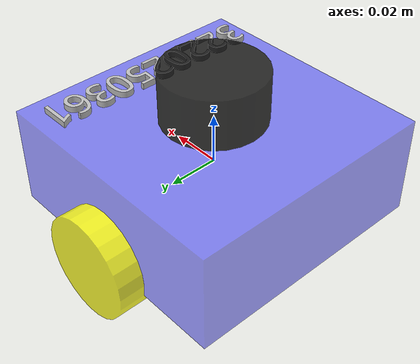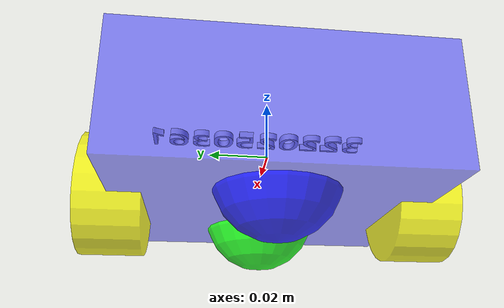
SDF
<?xml version="1.0"?>
<sdf version="1.5">
  <model name="robot">
    <pose>0 0 0 0 0 0</pose>

    <!-- Base Link -->
    <link name="base_link">
      <inertial>
        <mass>0.2</mass>
        <inertia>
          <ixx>0.00019333333</ixx>
          <ixy>0</ixy>
          <ixz>0</ixz>
          <iyy>0.00033333333</iyy>
          <iyz>0</iyz>
          <izz>0.00019333333</izz>
        </inertia>
      </inertial>
      <visual name="visual">
        <geometry>
          <box>
            <size>0.1 0.1 0.04</size>
          </box>
        </geometry>
        <material>
          <ambient>0.1 0.1 1.0 0.5</ambient>
          <diffuse>0.1 0.1 1.0 0.5</diffuse>
        </material>
      </visual>
      <collision name="collision">
        <geometry>
          <box>
            <size>0.1 0.1 0.04</size>
          </box>
        </geometry>
      </collision>
    </link>

    <!-- Laser Link -->
    <link name="laser_link">
      <inertial>
        <mass>0.1</mass>
        <inertia>
          <ixx>0.0000417</ixx>
          <ixy>0</ixy>
          <ixz>0</ixz>
          <iyy>0.0000417</iyy>
          <iyz>0</iyz>
          <izz>0.00002</izz>
        </inertia>
      </inertial>
      <visual name="visual">
      <pose>0 0 0.03 0 0 0</pose>
        <geometry>
          <cylinder>
            <radius>0.02</radius>
            <length>0.02</length>
          </cylinder>
        </geometry>
        <material>
          <ambient>0.0 0.0 0.0 0.8</ambient>
          <diffuse>0.0 0.0 0.0 0.8</diffuse>
        </material>
      </visual>
      <collision name="collision">
      <pose>0 0 0.03 0 0 0</pose>
        <geometry>
          <cylinder>
            <radius>0.02</radius>
            <length>0.02</length>
          </cylinder>
        </geometry>
      </collision>
      <sensor name="laser_sensor" type="gpu_lidar">
        <gz_frame_id>base_link</gz_frame_id>
        <always_on>true</always_on>
        <visualize>true</visualize>
        <update_rate>10</update_rate>
        <topic>scan</topic>
        <lidar>
          <scan>
            <horizontal>
              <samples>360</samples>
              <min_angle>0.0</min_angle>
              <max_angle>6.283185</max_angle>
            </horizontal>
          </scan>
          <range>
            <min>0.08</min>
            <max>10.0</max>
          </range>
          <noise>
            <type>gaussian</type>
            <mean>0.0</mean>
            <stddev>0.01</stddev>
          </noise>
        </lidar>
      </sensor>
    </link>

    <!-- Laser Joint -->
    <joint name="laser_joint" type="fixed">
      <parent>base_link</parent>
      <child>laser_link</child>
      <pose>0 0 0.03 0 0 0</pose>
    </joint>

    <!-- Left Wheel Link -->
    <link name="left_wheel_link">
      <inertial>
        <mass>0.02</mass>
        <inertia>
          <ixx>0.00000278</ixx>
          <ixy>0</ixy>
          <ixz>0</ixz>
          <iyy>0.00000278</iyy>
          <iyz>0</iyz>
          <izz>0.00000004</izz>
        </inertia>
      </inertial>
      <visual name="visual">
      <pose>0 0.05 -0.015 1.57079 0 0</pose>
        <geometry>
          <cylinder>
            <radius>0.02</radius>
            <length>0.02</length>
          </cylinder>
        </geometry>
        <material>
          <ambient>1.0 1.0 0.0 0.8</ambient>
          <diffuse>1.0 1.0 0.0 0.8</diffuse>
        </material>
      </visual>
      <collision name="collision">
      <pose>0 0.05 -0.015 1.57079 0 0</pose>
        <geometry>
          <cylinder>
            <radius>0.02</radius>
            <length>0.02</length>
          </cylinder>
        </geometry>
      </collision>
    </link>

    <!-- Left Wheel Joint -->
    <joint name="left_wheel_joint" type="revolute">
      <parent>base_link</parent>
      <child>left_wheel_link</child>
      <pose>0 0.05 -0.015 1.57079 0 0</pose>
      <axis>
        <xyz>0 0 -1</xyz>
      </axis>
    </joint>

    <!-- Right Wheel Link -->
    <link name="right_wheel_link">
      <inertial>
        <mass>0.02</mass>
        <inertia>
          <ixx>0.00000278</ixx>
          <ixy>0</ixy>
          <ixz>0</ixz>
          <iyy>0.00000278</iyy>
          <iyz>0</iyz>
          <izz>0.00000004</izz>
        </inertia>
      </inertial>
      <visual name="visual">
      <pose>0 -0.05 -0.015 1.57079 0 0</pose>
        <geometry>
          <cylinder>
            <radius>0.02</radius>
            <length>0.02</length>
          </cylinder>
        </geometry>
        <material>
          <ambient>1.0 1.0 0.0 0.8</ambient>
          <diffuse>1.0 1.0 0.0 0.8</diffuse>
        </material>
      </visual>
      <collision name="collision">
      <pose>0 -0.05 -0.015 1.57079 0 0</pose>
        <geometry>
          <cylinder>
            <radius>0.02</radius>
            <length>0.02</length>
          </cylinder>
        </geometry>
      </collision>
    </link>

    <!-- Right Wheel Joint -->
    <joint name="right_wheel_joint" type="revolute">
      <parent>base_link</parent>
      <child>right_wheel_link</child>
      <pose>0 -0.05 -0.015 1.57079 0 0</pose>
      <axis>
        <xyz>0 0 -1</xyz>
      </axis>
    </joint>

    <!-- Front Ball Link -->
    <link name="front_boll_link">
      <inertial>
        <mass>0.001</mass>
        <inertia>
          <ixx>0.00001</ixx>
          <ixy>0.000</ixy>
          <ixz>0.000</ixz>
          <iyy>0.00001</iyy>
          <iyz>0.000</iyz>
          <izz>0.00001</izz>
        </inertia>
      </inertial>
      <visual name="visual">
      <pose>0.025 0 -0.015 0 0 0</pose>
        <geometry>
          <sphere>
            <radius>0.02</radius>
          </sphere>
        </geometry>
        <material>
          <ambient>0.0 1.0 0.0 0.8</ambient>
          <diffuse>0.0 1.0 0.0 0.8</diffuse>
        </material>
      </visual>
      <collision name="collision">
      <pose>0.025 0 -0.015 0 0 0</pose>
        <geometry>
          <sphere>
            <radius>0.02</radius>
          </sphere>
        </geometry>
        <surface>
          <contact>
            <ode>
              <soft_cfm>0</soft_cfm>
              <soft_erp>0.2</soft_erp>
              <kp>1e+5</kp>
              <kd>1</kd>
              <max_vel>0.01</max_vel>
              <min_depth>0.001</min_depth>
            </ode>
          </contact>
        </surface>
      </collision>
    </link>

    <!-- Front Ball Joint -->
    <joint name="front_boll_joint" type="ball">
      <parent>base_link</parent>
      <child>front_boll_link</child>
      <pose>0.025 0 -0.015 0 0 0</pose>
    </joint>

    <!-- Back Ball Link -->
    <link name="behind_boll_link">
      <inertial>
        <mass>0.001</mass>
        <inertia>
          <ixx>0.00001</ixx>
          <ixy>0.000</ixy>
          <ixz>0.000</ixz>
          <iyy>0.00001</iyy>
          <iyz>0.000</iyz>
          <izz>0.00001</izz>
        </inertia>
      </inertial>
      <visual name="visual">
      <pose>-0.025 0 -0.015 0 0 0</pose>
        <geometry>
          <sphere>
            <radius>0.02</radius>
          </sphere>
        </geometry>
        <material>
          <ambient>0.0 0.0 1.0 0.8</ambient>
          <diffuse>0.0 0.0 1.0 0.8</diffuse>
        </material>
      </visual>
      <collision name="collision">
      <pose>-0.025 0 -0.015 0 0 0</pose>
        <geometry>
          <sphere>
            <radius>0.02</radius>
          </sphere>
        </geometry>
        <surface>
          <contact>
            <ode>
              <soft_cfm>0</soft_cfm>
              <soft_erp>0.2</soft_erp>
              <kp>1e+5</kp>
              <kd>1</kd>
              <max_vel>0.01</max_vel>
              <min_depth>0.001</min_depth>
            </ode>
          </contact>
        </surface>
      </collision>
    </link>

    <!-- Back Ball Joint -->
    <joint name="behind_boll_joint" type="ball">
      <parent>base_link</parent>
      <child>behind_boll_link</child>
      <pose>-0.025 0 -0.015 0 0 0</pose>
    </joint>

    <!-- IMU Link -->
    <link name="imu_link">
      <sensor name="imu_sensor" type="imu">
        <always_on>true</always_on>
        <update_rate>250</update_rate>
        <topic>imu</topic>
        <gz_frame_id>base_link</gz_frame_id>
        <imu>
          <angular_velocity>
            <x>
              <noise type="gaussian">
                <mean>0.0</mean>
                <stddev>32.0844</stddev>
                <bias_mean>0.333963</bias_mean>
                <bias_stddev>0.000000</bias_stddev>
              </noise>
            </x>
            <y>
              <noise type="gaussian">
                <mean>0.0</mean>
                <stddev>27.6577</stddev>
                <bias_mean>-0.132765</bias_mean>
                <bias_stddev>0.000000</bias_stddev>
              </noise>
            </y>
            <z>
              <noise type="gaussian">
                <mean>0.0</mean>
                <stddev>33.8533</stddev>
                <bias_mean>-0.272867</bias_mean>
                <bias_stddev>0.000000</bias_stddev>
              </noise>
            </z>
          </angular_velocity>
          <linear_acceleration>
            <x>
              <noise type="gaussian">
                <mean>0.0</mean>
                <stddev>0.036335</stddev>
                <bias_mean>0.0</bias_mean>
                <bias_stddev>0.000</bias_stddev>
              </noise>
            </x>
            <y>
              <noise type="gaussian">
                <mean>0.0</mean>
                <stddev>0.0295582</stddev>
                <bias_mean>0.0</bias_mean>
                <bias_stddev>0.000</bias_stddev>
              </noise>
            </y>
            <z>
              <noise type="gaussian">
                <mean>0.0</mean>
                <stddev>0.035191</stddev>
                <bias_mean>0.0</bias_mean>
                <bias_stddev>0.000</bias_stddev>
              </noise>
            </z>
          </linear_acceleration>
        </imu>
      </sensor>
    </link>

    <!-- IMU Joint -->
    <joint name="imu_joint" type="fixed">
      <parent>base_link</parent>
      <child>imu_link</child>
      <pose>0 0 0.03 0 0 0</pose>
    </joint>

    <!-- Number/Label Link -->
    <link name="num_link">
      <inertial>
        <mass>0.0001</mass>
        <inertia>
          <ixx>1.0E-06</ixx>
          <ixy>0</ixy>
          <ixz>0</ixz>
          <iyy>1.0E-06</iyy>
          <iyz>0</iyz>
          <izz>1.0E-06</izz>
        </inertia>
      </inertial>
      <visual name="visual">
        <pose>0.03 -0.045 0.02 1.57079 0 1.57079</pose>
        <geometry>
          <mesh>
            <uri>file:///home/ubuntu/Car_sim/src/robot_description/meshes/num.STL</uri>
            <scale>0.001 0.001 0.001</scale>
          </mesh>
        </geometry>
        <material>
          <ambient>0.75294 0.75294 0.75294 1</ambient>
          <diffuse>0.75294 0.75294 0.75294 1</diffuse>
        </material>
      </visual>
    </link>

    <!-- Number Joint -->
    <joint name="Num_Joint" type="fixed">
      <parent>base_link</parent>
      <child>num_link</child>
    </joint>

    <!-- DiffDrive Plugin -->
    <plugin filename="gz-sim-diff-drive-system" name="gz::sim::systems::DiffDrive">
      <left_joint>left_wheel_joint</left_joint>
      <right_joint>right_wheel_joint</right_joint>
      <wheel_separation>0.1</wheel_separation>
      <wheel_radius>0.02</wheel_radius>
      <max_wheel_torque>20</max_wheel_torque>
      <max_wheel_acceleration>1.0</max_wheel_acceleration>
      <odom_topic>odom</odom_topic>
      <topic>cmd_vel</topic>
      <frame_id>odom</frame_id>
      <child_frame_id>base_link</child_frame_id>
      <odom_publisher_frequency>100</odom_publisher_frequency>
    </plugin>

    <!-- JointState Publisher Plugin -->
    <plugin filename="gz-sim-joint-state-publisher-system" name="gz::sim::systems::JointStatePublisher">
      <topic>joint_states</topic>
      <joint_name>left_wheel_joint</joint_name>
      <joint_name>right_wheel_joint</joint_name>
    </plugin>

  </model>
</sdf>
